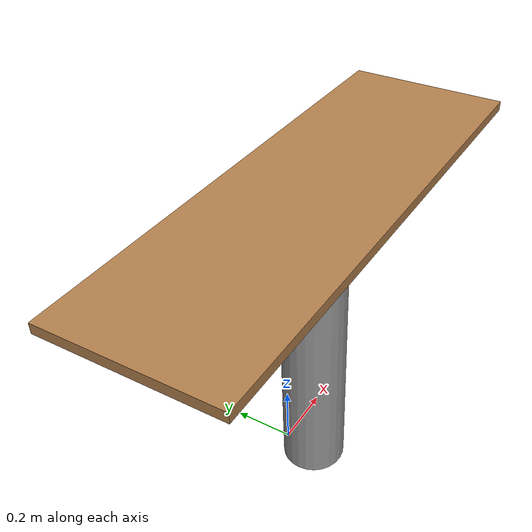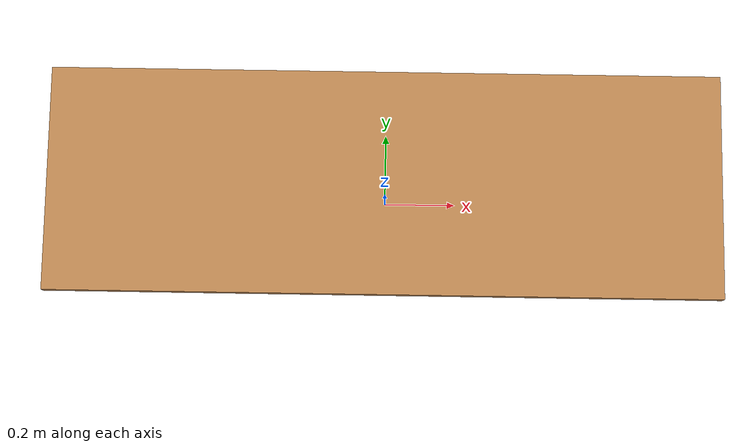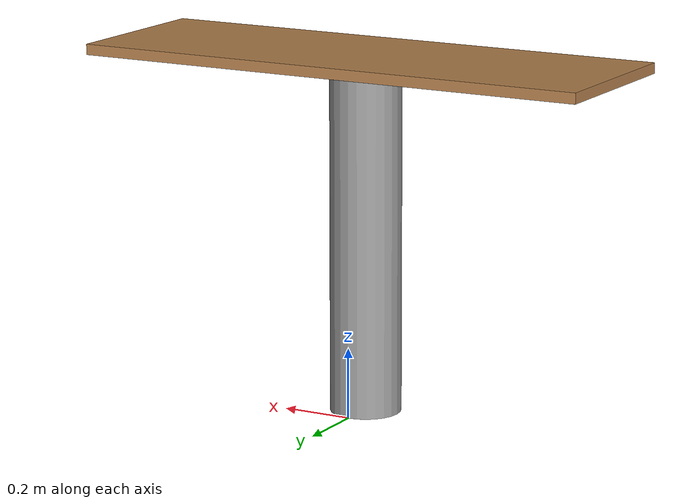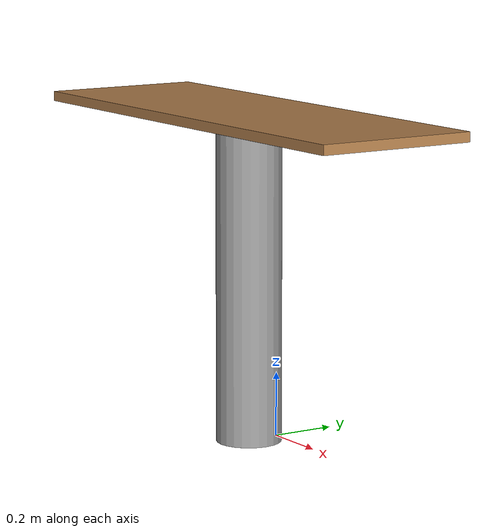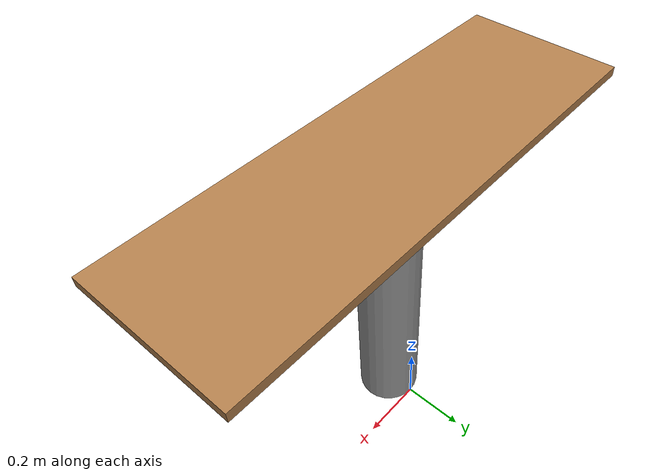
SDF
<?xml version="1.0" ?>
<sdf version="1.5">
  <model name="table">
    <static>true</static>
    <link name="link">
      <collision name="surface">
        <pose>0 -0.1 1.0 0 0 0</pose>
        <geometry>
          <box>
            <size>1.5 0.5 0.03</size>
          </box>
        </geometry>
        <surface>
          <friction>
            <ode>
              <mu>0.6</mu>
              <mu2>0.6</mu2>
            </ode>
          </friction>
        </surface>
      </collision>
      <visual name="visual1">
        <pose>0 -0.1 1.0 0 0 0</pose>
        <geometry>
          <box>
            <size>1.5 0.5 0.03</size>
          </box>
        </geometry>
        <material>
          <script>
            <uri>file://media/materials/scripts/gazebo.material</uri>
            <name>Gazebo/Wood</name>
          </script>
        </material>
      </visual>
      <collision name="leg">
        <pose>0 -0.1 0.5 0 0 0</pose>
        <geometry>
          <cylinder>
            <radius>0.1</radius>
            <length>1.0</length>
          </cylinder>
        </geometry>
      </collision>
      <visual name="leg">
        <pose>0 -0.1 0.5 0 0 0</pose>
        <geometry>
          <cylinder>
            <radius>0.1</radius>
            <length>1.0</length>
          </cylinder>
        </geometry>
        <material>
          <script>
            <uri>file://media/materials/scripts/gazebo.material</uri>
            <name>Gazebo/Grey</name>
          </script>
        </material>
      </visual>
    </link>
  </model>
</sdf>
